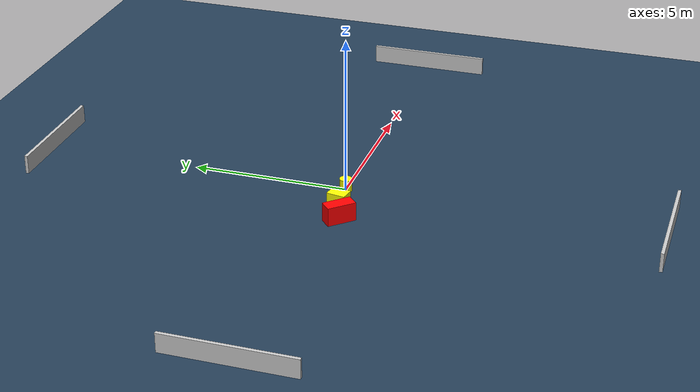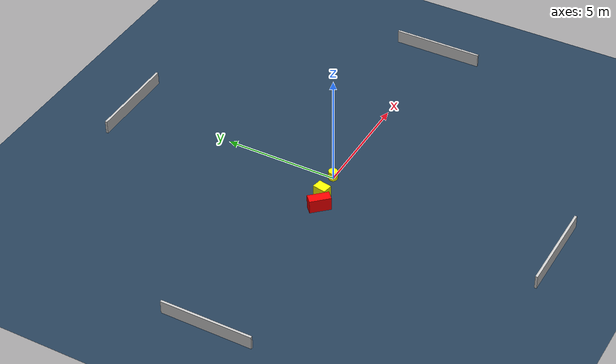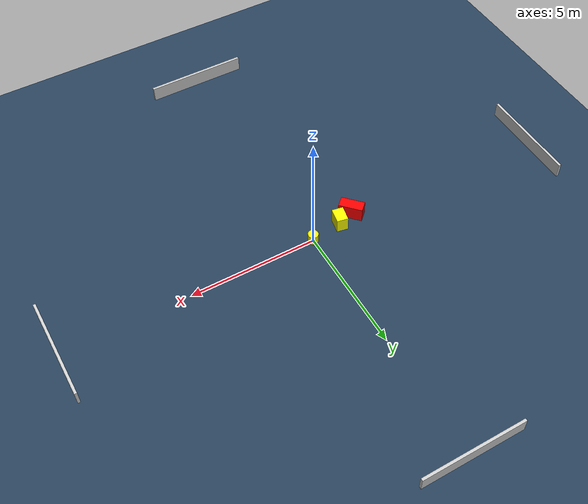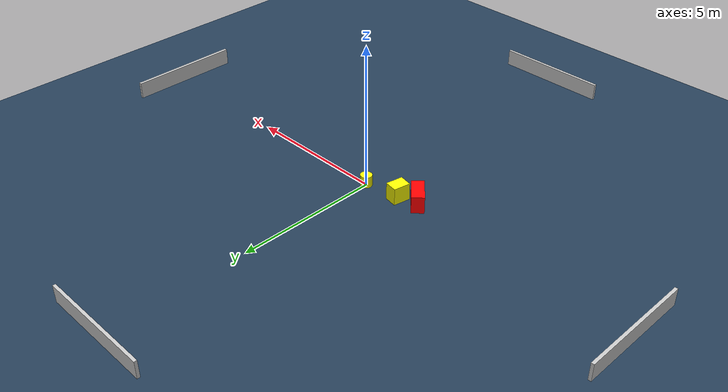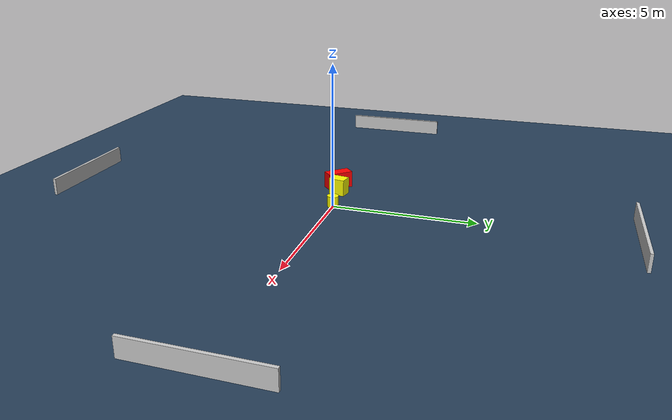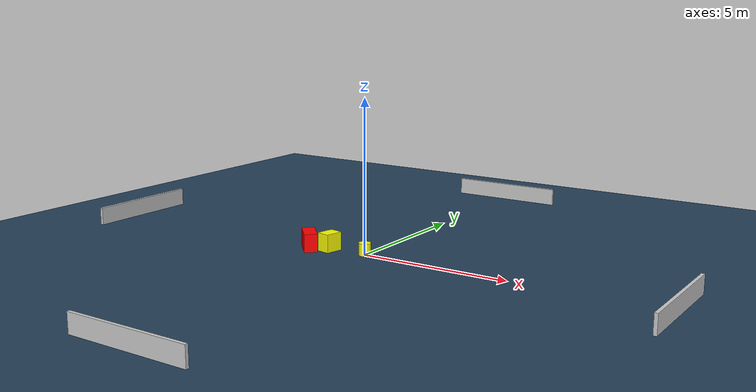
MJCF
<?xml version="1.0" ?>
<mujoco model="generated_environment">
  <option timestep="0.01" integrator="RK4" cone="elliptic"/>
  <default>
    <geom density="1"/>
  </default>
  <asset>
    <texture builtin="gradient" height="3072" name="skybox" rgb1="0.3 0.5 0.7" rgb2="0 0 0" type="skybox" width="512"/>
    <texture builtin="checker" height="300" name="groundplane" rgb1="0.2 0.3 0.4" rgb2="0.1 0.2 0.3" type="2d" width="300"/>
    <material name="groundplane" reflectance="0.2" texrepeat="5 5" texture="groundplane"/>
  </asset>
  <worldbody>
    <light dir="0 0 -1" directional="true" pos="0 0 1.5"/>
    <geom condim="3" friction="0.5 0.005 0.001" material="groundplane" name="floor" pos="0 0 0" size="0 0 0.05" type="plane"/>
    <body name="walls">
      <geom name="wall_1" condim="4" pos="-10.0 0.0 0.3" rgba="0.800000011920929 0.800000011920929 0.800000011920929 1.0" size="0.05 2.0 0.3" type="box"/>
      <geom name="wall_2" condim="4" pos="10.0 0.0 0.3" rgba="0.800000011920929 0.800000011920929 0.800000011920929 1.0" size="0.05 2.0 0.3" type="box"/>
      <geom name="wall_3" condim="4" pos="0.0 -10.0 0.3" rgba="0.800000011920929 0.800000011920929 0.800000011920929 1.0" size="2.0 0.05 0.3" type="box"/>
      <geom name="wall_4" condim="4" pos="0.0 10.0 0.3" rgba="0.800000011920929 0.800000011920929 0.800000011920929 1.0" size="2.0 0.05 0.3" type="box"/>
    </body>
    <body name="robot">
      <joint name="joint_x" type="slide" pos="0 0 0" axis="1 0 0"/>
      <joint name="joint_y" type="slide" pos="0 0 0" axis="0 1 0"/>
      <geom name="robot" type="cylinder" pos="0.0 0.0 0.2" size="0.2 0.2 0.0" mass="5.0" friction="1.0 0.005 0.0001" condim="4" rgba="1.0 1.0 0.0 1.0"/>
    </body>
    <body name="obstacle_1_movable">
      <geom name="obstacle_1_movable" condim="4" pos="-1.2593239852711982 -0.17138725731741994 0.3" euler="0 0 79.39376783717233" friction="0.0 0.005 0.001" rgba="1.0 1.0 0.0 1.0" size="0.2972346745659702 0.22143234897456784 0.3" type="box" mass="0.1"/>
      <joint type="free"/>
    </body>
    <body name="obstacle_2_static">
      <geom name="obstacle_2_static" condim="4" pos="-1.9076146317021694 -0.39171538691591806 0.3" euler="0 0 133.09668725022445" friction="0.0 0.005 0.001" rgba="1.0 0.0 0.0 1.0" size="0.46484339511596856 0.21365150945786088 0.3" type="box"/>
    </body>
  </worldbody>
  <actuator>
    <motor name="actuator_x" joint="joint_x" gear="1" ctrlrange="-1 1"/>
    <motor name="actuator_y" joint="joint_y" gear="1" ctrlrange="-1 1"/>
  </actuator>
</mujoco>
